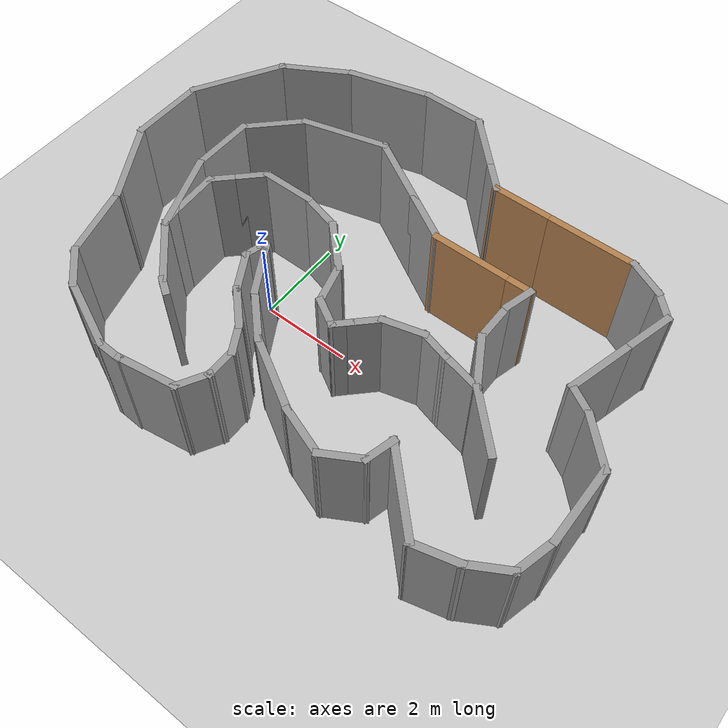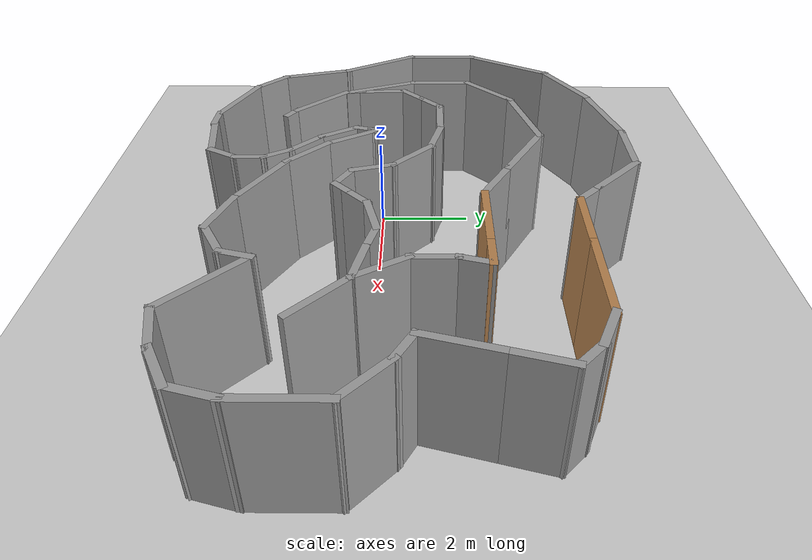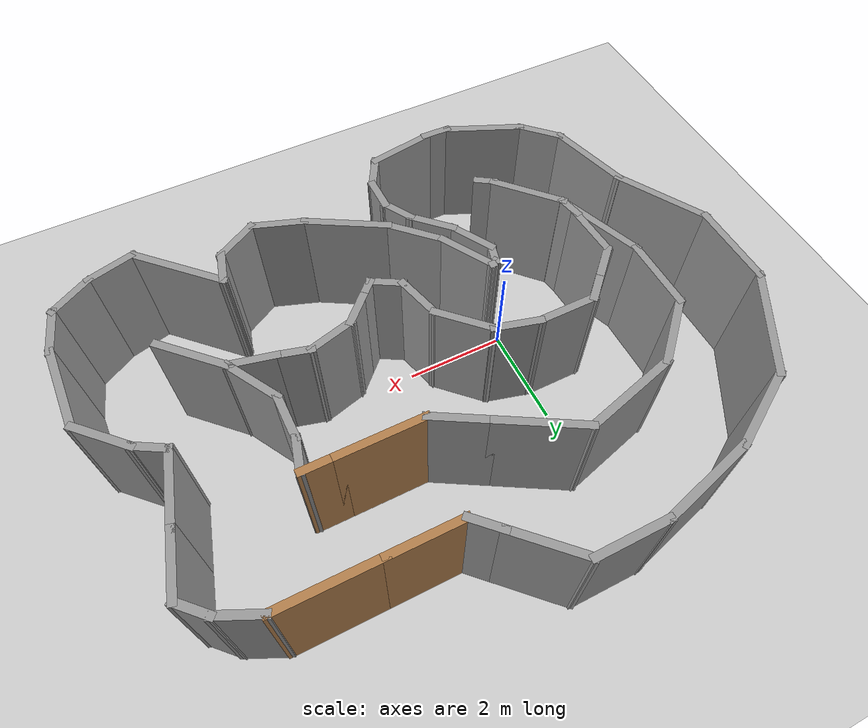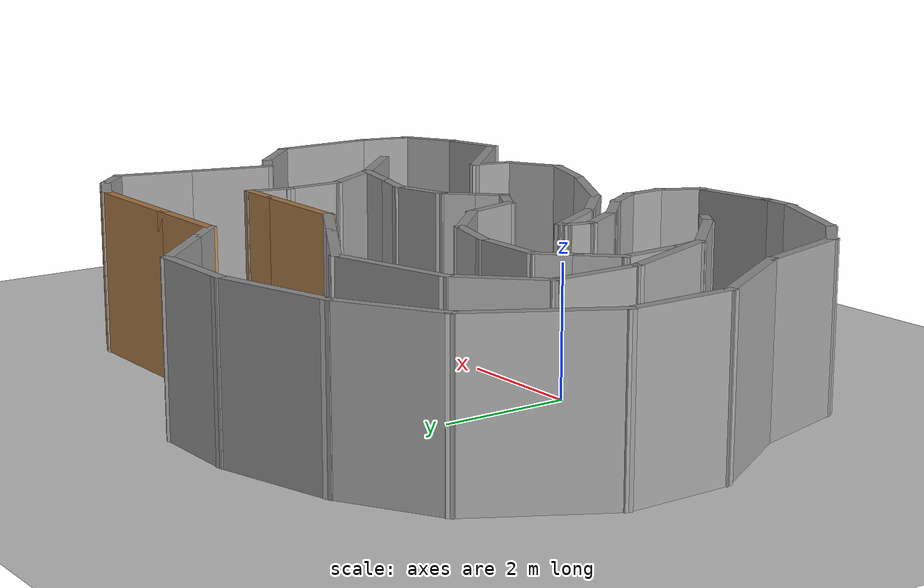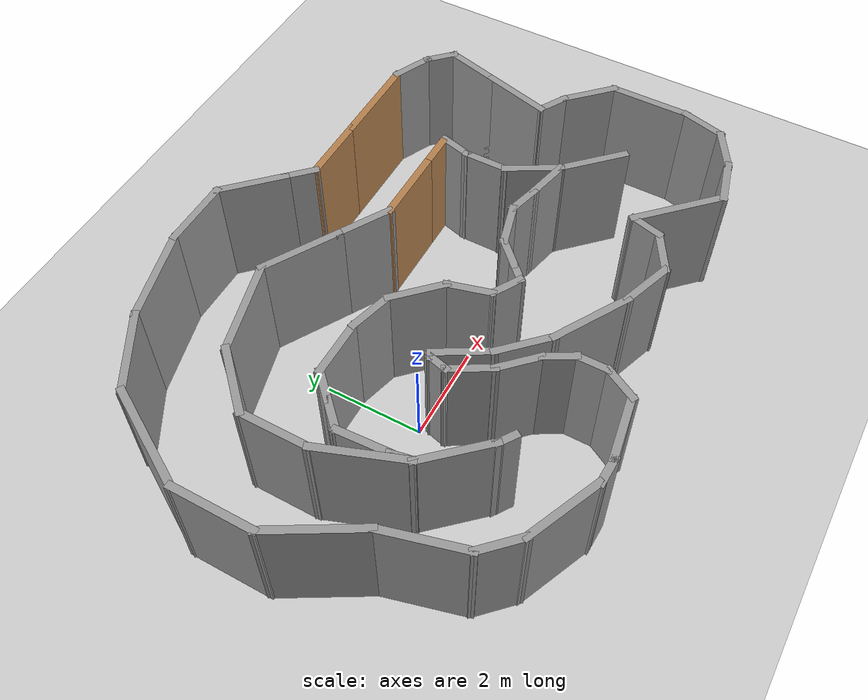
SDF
<sdf version="1.6">
 <world name="default">
  <light name="sun" type="directional">
   <pose>0 0 10 0 -0 0</pose>
   <diffuse>0.8 0.8 0.8 1</diffuse>
   <specular>0.2 0.2 0.2 1</specular>
   <attenuation>
    <range>1000</range>
    <constant>0.9</constant>
    <linear>0.01</linear>
    <quadratic>0.001</quadratic>
   </attenuation>
   <direction>-0.5 0.1 -0.9</direction>
  </light>
  <model name="ground_plane">
   <static>1</static>
   <link name="link">
    <collision name="collision">
     <geometry><plane><normal>0 0 1</normal><size>100 100</size></plane></geometry>
     <surface>
      <contact><collide_bitmask>65535</collide_bitmask></contact>
      <friction><ode><mu>100</mu><mu2>50</mu2></ode></friction>
     </surface>
    </collision>
    <visual name="visual">
     <cast_shadows>0</cast_shadows>
     <geometry><plane><normal>0 0 1</normal><size>100 100</size></plane></geometry>
     <material>
      <script><uri>file://media/materials/scripts/gazebo.material</uri><name>Gazebo/Grey</name></script>
     </material>
    </visual>
   </link>
  </model>
  <gravity>0 0 -9.8</gravity>
  <magnetic_field>6e-06 2.3e-05 -4.2e-05</magnetic_field>
  <atmosphere type="adiabatic"/>
  <physics name="default_physics" default="0" type="ode">
   <max_step_size>0.001</max_step_size>
   <real_time_factor>1</real_time_factor>
   <real_time_update_rate>1000</real_time_update_rate>
  </physics>
  <scene><ambient>0.4 0.4 0.4 1</ambient><background>0.7 0.7 0.7 1</background><shadows>1</shadows></scene>
  <audio><device>default</device></audio>
  <spherical_coordinates>
   <surface_model>EARTH_WGS84</surface_model>
   <latitude_deg>0</latitude_deg>
   <longitude_deg>0</longitude_deg>
   <elevation>0</elevation>
   <heading_deg>0</heading_deg>
  </spherical_coordinates>
  <model name="Untitled">
   <pose>1.95907 0.803787 0 0 -0 0</pose>
   <link name="Wall_100">
    <collision name="Wall_100_Collision">
     <geometry><box><size>0.996993 0.15 2.5</size></box></geometry>
     <pose>0 0 1.25 0 -0 0</pose>
    </collision>
    <visual name="Wall_100_Visual">
     <pose>0 0 1.25 0 -0 0</pose>
     <geometry><box><size>0.996993 0.15 2.5</size></box></geometry>
     <material>
      <script><uri>file://media/materials/scripts/gazebo.material</uri><name>Gazebo/Grey</name></script>
      <ambient>1 1 1 1</ambient>
     </material>
     <meta><layer>0</layer></meta>
    </visual>
    <pose>2.93878 -0.946089 0 0 -0 -0.224284</pose>
   </link>
   <link name="Wall_102">
    <collision name="Wall_102_Collision">
     <geometry><box><size>0.75 0.15 2.5</size></box></geometry>
     <pose>0 0 1.25 0 -0 0</pose>
    </collision>
    <visual name="Wall_102_Visual">
     <pose>0 0 1.25 0 -0 0</pose>
     <geometry><box><size>0.75 0.15 2.5</size></box></geometry>
     <material>
      <script><uri>file://media/materials/scripts/gazebo.material</uri><name>Gazebo/Grey</name></script>
      <ambient>1 1 1 1</ambient>
     </material>
     <meta><layer>0</layer></meta>
    </visual>
    <pose>2.7479 -3.09407 0 0 -0 -1.8326</pose>
   </link>
   <link name="Wall_103">
    <collision name="Wall_103_Collision">
     <geometry><box><size>1 0.15 2.5</size></box></geometry>
     <pose>0 0 1.25 0 -0 0</pose>
    </collision>
    <visual name="Wall_103_Visual">
     <pose>0 0 1.25 0 -0 0</pose>
     <geometry><box><size>1 0.15 2.5</size></box></geometry>
     <material>
      <script><uri>file://media/materials/scripts/gazebo.material</uri><name>Gazebo/Grey</name></script>
      <ambient>1 1 1 1</ambient>
     </material>
     <meta><layer>0</layer></meta>
    </visual>
    <pose>2.30219 -3.59635 0 0 -0 -2.61799</pose>
   </link>
   <link name="Wall_104">
    <collision name="Wall_104_Collision">
     <geometry><box><size>1.16353 0.15 2.5</size></box></geometry>
     <pose>0 0 1.25 0 -0 0</pose>
    </collision>
    <visual name="Wall_104_Visual">
     <pose>0 0 1.25 0 -0 0</pose>
     <geometry><box><size>1.16353 0.15 2.5</size></box></geometry>
     <material>
      <script><uri>file://media/materials/scripts/gazebo.material</uri><name>Gazebo/Grey</name></script>
      <ambient>1 1 1 1</ambient>
     </material>
     <meta><layer>0</layer></meta>
    </visual>
    <pose>1.45619 -3.64038 0 0 -0 2.80271</pose>
   </link>
   <link name="Wall_106">
    <collision name="Wall_106_Collision">
     <geometry><box><size>1.25 0.15 2.5</size></box></geometry>
     <pose>0 0 1.25 0 -0 0</pose>
    </collision>
    <visual name="Wall_106_Visual">
     <pose>0 0 1.25 0 -0 0</pose>
     <geometry><box><size>1.25 0.15 2.5</size></box></geometry>
     <material>
      <script><uri>file://media/materials/scripts/gazebo.material</uri><name>Gazebo/Grey</name></script>
      <ambient>1 1 1 1</ambient>
     </material>
     <meta><layer>0</layer></meta>
    </visual>
    <pose>-0.796303 -2.28301 0 0 -0 2.35619</pose>
   </link>
   <link name="Wall_107">
    <collision name="Wall_107_Collision">
     <geometry><box><size>1.25 0.15 2.5</size></box></geometry>
     <pose>0 0 1.25 0 -0 0</pose>
    </collision>
    <visual name="Wall_107_Visual">
     <pose>0 0 1.25 0 -0 0</pose>
     <geometry><box><size>1.25 0.15 2.5</size></box></geometry>
     <material>
      <script><uri>file://media/materials/scripts/gazebo.material</uri><name>Gazebo/Grey</name></script>
      <ambient>1 1 1 1</ambient>
     </material>
     <meta><layer>0</layer></meta>
    </visual>
    <pose>-1.46021 -1.41778 0 0 -0 2.0944</pose>
   </link>
   <link name="Wall_108">
    <collision name="Wall_108_Collision">
     <geometry><box><size>0.15 0.15 2.5</size></box></geometry>
     <pose>0 0 1.25 0 -0 0</pose>
    </collision>
    <visual name="Wall_108_Visual">
     <pose>0 0 1.25 0 -0 0</pose>
     <geometry><box><size>0.15 0.15 2.5</size></box></geometry>
     <material>
      <script><uri>file://media/materials/scripts/gazebo.material</uri><name>Gazebo/Grey</name></script>
      <ambient>1 1 1 1</ambient>
     </material>
     <meta><layer>0</layer></meta>
    </visual>
    <pose>-1.73521 -0.94147 0 0 -0 0</pose>
   </link>
   <link name="Wall_109">
    <collision name="Wall_109_Collision">
     <geometry><box><size>0.25 0.15 2.5</size></box></geometry>
     <pose>0 0 1.25 0 -0 0</pose>
    </collision>
    <visual name="Wall_109_Visual">
     <pose>0 0 1.25 0 -0 0</pose>
     <geometry><box><size>0.25 0.15 2.5</size></box></geometry>
     <material>
      <script><uri>file://media/materials/scripts/gazebo.material</uri><name>Gazebo/Grey</name></script>
      <ambient>1 1 1 1</ambient>
     </material>
     <meta><layer>0</layer></meta>
    </visual>
    <pose>-1.77851 -0.96647 0 0 -0 -2.61799</pose>
   </link>
   <link name="Wall_110">
    <collision name="Wall_110_Collision">
     <geometry><box><size>0.5 0.15 2.5</size></box></geometry>
     <pose>0 0 1.25 0 -0 0</pose>
    </collision>
    <visual name="Wall_110_Visual">
     <pose>0 0 1.25 0 -0 0</pose>
     <geometry><box><size>0.5 0.15 2.5</size></box></geometry>
     <material>
      <script><uri>file://media/materials/scripts/gazebo.material</uri><name>Gazebo/Grey</name></script>
      <ambient>1 1 1 1</ambient>
     </material>
     <meta><layer>0</layer></meta>
    </visual>
    <pose>-1.86711 -1.16051 0 0 -0 -1.8326</pose>
   </link>
   <link name="Wall_111">
    <collision name="Wall_111_Collision">
     <geometry><box><size>1 0.15 2.5</size></box></geometry>
     <pose>0 0 1.25 0 -0 0</pose>
    </collision>
    <visual name="Wall_111_Visual">
     <pose>0 0 1.25 0 -0 0</pose>
     <geometry><box><size>1 0.15 2.5</size></box></geometry>
     <material>
      <script><uri>file://media/materials/scripts/gazebo.material</uri><name>Gazebo/Grey</name></script>
      <ambient>1 1 1 1</ambient>
     </material>
     <meta><layer>0</layer></meta>
    </visual>
    <pose>-1.6999 -1.69761 0 0 -0 -1.0472</pose>
   </link>
   <link name="Wall_112">
    <collision name="Wall_112_Collision">
     <geometry><box><size>1 0.15 2.5</size></box></geometry>
     <pose>0 0 1.25 0 -0 0</pose>
    </collision>
    <visual name="Wall_112_Visual">
     <pose>0 0 1.25 0 -0 0</pose>
     <geometry><box><size>1 0.15 2.5</size></box></geometry>
     <material>
      <script><uri>file://media/materials/scripts/gazebo.material</uri><name>Gazebo/Grey</name></script>
      <ambient>1 1 1 1</ambient>
     </material>
     <meta><layer>0</layer></meta>
    </visual>
    <pose>-1.18688 -2.36619 0 0 -0 -0.785398</pose>
   </link>
   <link name="Wall_113">
    <collision name="Wall_113_Collision">
     <geometry><box><size>0.75 0.15 2.5</size></box></geometry>
     <pose>0 0 1.25 0 -0 0</pose>
    </collision>
    <visual name="Wall_113_Visual">
     <pose>0 0 1.25 0 -0 0</pose>
     <geometry><box><size>0.75 0.15 2.5</size></box></geometry>
     <material>
      <script><uri>file://media/materials/scripts/gazebo.material</uri><name>Gazebo/Grey</name></script>
      <ambient>1 1 1 1</ambient>
     </material>
     <meta><layer>0</layer></meta>
    </visual>
    <pose>-0.73636 -2.92651 0 0 -0 -1.0472</pose>
   </link>
   <link name="Wall_114">
    <collision name="Wall_114_Collision">
     <geometry><box><size>0.75 0.15 2.5</size></box></geometry>
     <pose>0 0 1.25 0 -0 0</pose>
    </collision>
    <visual name="Wall_114_Visual">
     <pose>0 0 1.25 0 -0 0</pose>
     <geometry><box><size>0.75 0.15 2.5</size></box></geometry>
     <material>
      <script><uri>file://media/materials/scripts/gazebo.material</uri><name>Gazebo/Grey</name></script>
      <ambient>1 1 1 1</ambient>
     </material>
     <meta><layer>0</layer></meta>
    </visual>
    <pose>-0.58636 -3.48632 0 0 -0 -1.5708</pose>
   </link>
   <link name="Wall_115">
    <collision name="Wall_115_Collision">
     <geometry><box><size>0.807607 0.15 2.5</size></box></geometry>
     <pose>0 0 1.25 0 -0 0</pose>
    </collision>
    <visual name="Wall_115_Visual">
     <pose>0 0 1.25 0 -0 0</pose>
     <geometry><box><size>0.807607 0.15 2.5</size></box></geometry>
     <material>
      <script><uri>file://media/materials/scripts/gazebo.material</uri><name>Gazebo/Grey</name></script>
      <ambient>1 1 1 1</ambient>
     </material>
     <meta><layer>0</layer></meta>
    </visual>
    <pose>-0.7463 -4.0736 0 0 -0 -2.07879</pose>
   </link>
   <link name="Wall_117">
    <collision name="Wall_117_Collision">
     <geometry><box><size>1.38756 0.15 2.5</size></box></geometry>
     <pose>0 0 1.25 0 -0 0</pose>
    </collision>
    <visual name="Wall_117_Visual">
     <pose>0 0 1.25 0 -0 0</pose>
     <geometry><box><size>1.38756 0.15 2.5</size></box></geometry>
     <material>
      <script><uri>file://media/materials/scripts/gazebo.material</uri><name>Gazebo/Grey</name></script>
      <ambient>1 1 1 1</ambient>
     </material>
     <meta><layer>0</layer></meta>
    </visual>
    <pose>-1.51707 -4.44453 0 0 -0 -2.98115</pose>
   </link>
   <link name="Wall_118">
    <collision name="Wall_118_Collision">
     <geometry><box><size>0.650231 0.15 2.5</size></box></geometry>
     <pose>0 0 1.25 0 -0 0</pose>
    </collision>
    <visual name="Wall_118_Visual">
     <pose>0 0 1.25 0 -0 0</pose>
     <geometry><box><size>0.650231 0.15 2.5</size></box></geometry>
     <material>
      <script><uri>file://media/materials/scripts/gazebo.material</uri><name>Gazebo/Grey</name></script>
      <ambient>1 1 1 1</ambient>
     </material>
     <meta><layer>0</layer></meta>
    </visual>
    <pose>-2.37791 -4.551 0 0 -0 3.11118</pose>
   </link>
   <link name="Wall_28">
    <collision name="Wall_28_Collision">
     <geometry><box><size>2 0.15 2.5</size></box></geometry>
     <pose>0 0 1.25 0 -0 0</pose>
    </collision>
    <visual name="Wall_28_Visual">
     <pose>0 0 1.25 0 -0 0</pose>
     <geometry><box><size>2 0.15 2.5</size></box></geometry>
     <material>
      <script><uri>file://media/materials/scripts/gazebo.material</uri><name>Gazebo/Grey</name></script>
      <ambient>1 1 1 1</ambient>
     </material>
     <meta><layer>0</layer></meta>
    </visual>
    <pose>3.47962 -3.45836 0 0 -0 2.35619</pose>
   </link>
   <link name="Wall_35">
    <collision name="Wall_35_Collision">
     <geometry><box><size>1.75 0.15 2.5</size></box></geometry>
     <pose>0 0 1.25 0 -0 0</pose>
    </collision>
    <visual name="Wall_35_Visual">
     <pose>0 0 1.25 0 -0 0</pose>
     <geometry><box><size>1.75 0.15 2.5</size></box></geometry>
     <material>
      <script><uri>file://media/materials/scripts/gazebo.material</uri><name>Gazebo/Grey</name></script>
      <ambient>1 1 1 1</ambient>
     </material>
     <meta><layer>0</layer></meta>
    </visual>
    <pose>0.285426 -3.07192 0 0 -0 2.61799</pose>
   </link>
   <link name="Wall_39">
    <collision name="Wall_39_Collision">
     <geometry><box><size>1.68574 0.15 2.5</size></box></geometry>
     <pose>0 0 1.25 0 -0 0</pose>
    </collision>
    <visual name="Wall_39_Visual">
     <pose>0 0 1.25 0 -0 0</pose>
     <geometry><box><size>1.68574 0.15 2.5</size></box></geometry>
     <material>
      <script><uri>file://media/materials/scripts/gazebo.material</uri><name>Gazebo/Grey</name></script>
      <ambient>1 1 1 1</ambient>
     </material>
     <meta><layer>0</layer></meta>
    </visual>
    <pose>-3.33221 -4.22227 0 0 -0 2.73183</pose>
   </link>
   <link name="Wall_40">
    <collision name="Wall_40_Collision">
     <geometry><box><size>1 0.15 2.5</size></box></geometry>
     <pose>0 0 1.25 0 -0 0</pose>
    </collision>
    <visual name="Wall_40_Visual">
     <pose>0 0 1.25 0 -0 0</pose>
     <geometry><box><size>1 0.15 2.5</size></box></geometry>
     <material>
      <script><uri>file://media/materials/scripts/gazebo.material</uri><name>Gazebo/Grey</name></script>
      <ambient>1 1 1 1</ambient>
     </material>
     <meta><layer>0</layer></meta>
    </visual>
    <pose>-4.33703 -3.61584 0 0 -0 2.35619</pose>
   </link>
   <link name="Wall_41">
    <collision name="Wall_41_Collision">
     <geometry><box><size>1.75 0.15 2.5</size></box></geometry>
     <pose>0 0 1.25 0 -0 0</pose>
    </collision>
    <visual name="Wall_41_Visual">
     <pose>0 0 1.25 0 -0 0</pose>
     <geometry><box><size>1.75 0.15 2.5</size></box></geometry>
     <material>
      <script><uri>file://media/materials/scripts/gazebo.material</uri><name>Gazebo/Grey</name></script>
      <ambient>1 1 1 1</ambient>
     </material>
     <meta><layer>0</layer></meta>
    </visual>
    <pose>-4.84461 -2.54258 0 0 -0 1.8326</pose>
   </link>
   <link name="Wall_45">
    <collision name="Wall_45_Collision">
     <geometry><box><size>1.06367 0.15 2.5</size></box></geometry>
     <pose>0 0 1.25 0 -0 0</pose>
    </collision>
    <visual name="Wall_45_Visual">
     <pose>0 0 1.25 0 -0 0</pose>
     <geometry><box><size>1.06367 0.15 2.5</size></box></geometry>
     <material>
      <script><uri>file://media/materials/scripts/gazebo.material</uri><name>Gazebo/Grey</name></script>
      <ambient>1 1 1 1</ambient>
     </material>
     <meta><layer>0</layer></meta>
    </visual>
    <pose>4.57531 -4.01072 0 0 -0 0.258836</pose>
   </link>
   <link name="Wall_46">
    <collision name="Wall_46_Collision">
     <geometry><box><size>1 0.15 2.5</size></box></geometry>
     <pose>0 0 1.25 0 -0 0</pose>
    </collision>
    <visual name="Wall_46_Visual">
     <pose>0 0 1.25 0 -0 0</pose>
     <geometry><box><size>1 0.15 2.5</size></box></geometry>
     <material>
      <script><uri>file://media/materials/scripts/gazebo.material</uri><name>Gazebo/Grey</name></script>
      <ambient>1 1 1 1</ambient>
     </material>
     <meta><layer>0</layer></meta>
    </visual>
    <pose>5.38499 -3.68129 0 0 -0 0.523599</pose>
   </link>
   <link name="Wall_47">
    <collision name="Wall_47_Collision">
     <geometry><box><size>1 0.15 2.5</size></box></geometry>
     <pose>0 0 1.25 0 -0 0</pose>
    </collision>
    <visual name="Wall_47_Visual">
     <pose>0 0 1.25 0 -0 0</pose>
     <geometry><box><size>1 0.15 2.5</size></box></geometry>
     <material>
      <script><uri>file://media/materials/scripts/gazebo.material</uri><name>Gazebo/Grey</name></script>
      <ambient>1 1 1 1</ambient>
     </material>
     <meta><layer>0</layer></meta>
    </visual>
    <pose>5.86305 -3.05827 0 0 -0 1.309</pose>
   </link>
   <link name="Wall_48">
    <collision name="Wall_48_Collision">
     <geometry><box><size>1.75 0.15 2.5</size></box></geometry>
     <pose>0 0 1.25 0 -0 0</pose>
    </collision>
    <visual name="Wall_48_Visual">
     <pose>0 0 1.25 0 -0 0</pose>
     <geometry><box><size>1.75 0.15 2.5</size></box></geometry>
     <material>
      <script><uri>file://media/materials/scripts/gazebo.material</uri><name>Gazebo/Grey</name></script>
      <ambient>1 1 1 1</ambient>
     </material>
     <meta><layer>0</layer></meta>
    </visual>
    <pose>5.97305 -1.84775 0 0 -0 1.5708</pose>
   </link>
   <link name="Wall_49">
    <collision name="Wall_49_Collision">
     <geometry><box><size>1.25 0.15 2.5</size></box></geometry>
     <pose>0 0 1.25 0 -0 0</pose>
    </collision>
    <visual name="Wall_49_Visual">
     <pose>0 0 1.25 0 -0 0</pose>
     <geometry><box><size>1.25 0.15 2.5</size></box></geometry>
     <material>
      <script><uri>file://media/materials/scripts/gazebo.material</uri><name>Gazebo/Grey</name></script>
      <ambient>1 1 1 1</ambient>
     </material>
     <meta><layer>0</layer></meta>
    </visual>
    <pose>5.58414 -0.658842 0 0 -0 2.35619</pose>
   </link>
   <link name="Wall_50">
    <collision name="Wall_50_Collision">
     <geometry><box><size>0.75 0.15 2.5</size></box></geometry>
     <pose>0 0 1.25 0 -0 0</pose>
    </collision>
    <visual name="Wall_50_Visual">
     <pose>0 0 1.25 0 -0 0</pose>
     <geometry><box><size>0.75 0.15 2.5</size></box></geometry>
     <material>
      <script><uri>file://media/materials/scripts/gazebo.material</uri><name>Gazebo/Grey</name></script>
      <ambient>1 1 1 1</ambient>
     </material>
     <meta><layer>0</layer></meta>
    </visual>
    <pose>4.93542 -0.119933 0 0 -0 2.61799</pose>
   </link>
   <link name="Wall_51">
    <collision name="Wall_51_Collision">
     <geometry><box><size>1.5 0.15 2.5</size></box></geometry>
     <pose>0 0 1.25 0 -0 0</pose>
    </collision>
    <visual name="Wall_51_Visual">
     <pose>0 0 1.25 0 -0 0</pose>
     <geometry><box><size>1.5 0.15 2.5</size></box></geometry>
     <material>
      <script><uri>file://media/materials/scripts/gazebo.material</uri><name>Gazebo/Grey</name></script>
      <ambient>1 1 1 1</ambient>
     </material>
     <meta><layer>0</layer></meta>
    </visual>
    <pose>4.85032 0.682067 0 0 -0 1.309</pose>
   </link>
   <link name="Wall_52">
    <collision name="Wall_52_Collision">
     <geometry><box><size>1.25 0.15 2.5</size></box></geometry>
     <pose>0 0 1.25 0 -0 0</pose>
    </collision>
    <visual name="Wall_52_Visual">
     <pose>0 0 1.25 0 -0 0</pose>
     <geometry><box><size>1.25 0.15 2.5</size></box></geometry>
     <material>
      <script><uri>file://media/materials/scripts/gazebo.material</uri><name>Gazebo/Grey</name></script>
      <ambient>1 1 1 1</ambient>
     </material>
     <meta><layer>0</layer></meta>
    </visual>
    <pose>5.16737 1.86533 0 0 -0 1.309</pose>
   </link>
   <link name="Wall_53">
    <collision name="Wall_53_Collision">
     <geometry><box><size>0.75 0.15 2.5</size></box></geometry>
     <pose>0 0 1.25 0 -0 0</pose>
    </collision>
    <visual name="Wall_53_Visual">
     <pose>0 0 1.25 0 -0 0</pose>
     <geometry><box><size>0.75 0.15 2.5</size></box></geometry>
     <material>
      <script><uri>file://media/materials/scripts/gazebo.material</uri><name>Gazebo/Grey</name></script>
      <ambient>1 1 1 1</ambient>
     </material>
     <meta><layer>0</layer></meta>
    </visual>
    <pose>5.09759 2.60872 0 0 -0 2.35619</pose>
   </link>
   <link name="Wall_58">
    <collision name="Wall_58_Collision">
     <geometry><box><size>0.75 0.15 2.5</size></box></geometry>
     <pose>0 0 1.25 0 -0 0</pose>
    </collision>
    <visual name="Wall_58_Visual">
     <pose>0 0 1.25 0 -0 0</pose>
     <geometry><box><size>0.75 0.15 2.5</size></box></geometry>
     <material>
      <script><uri>file://media/materials/scripts/gazebo.material</uri><name>Gazebo/Grey</name></script>
      <ambient>1 1 1 1</ambient>
     </material>
     <meta><layer>0</layer></meta>
    </visual>
    <pose>0.913169 -1.12874 0 0 -0 -2.35619</pose>
   </link>
   <link name="Wall_59">
    <collision name="Wall_59_Collision">
     <geometry><box><size>0.5 0.15 2.5</size></box></geometry>
     <pose>0 0 1.25 0 -0 0</pose>
    </collision>
    <visual name="Wall_59_Visual">
     <pose>0 0 1.25 0 -0 0</pose>
     <geometry><box><size>0.5 0.15 2.5</size></box></geometry>
     <material>
      <script><uri>file://media/materials/scripts/gazebo.material</uri><name>Gazebo/Grey</name></script>
      <ambient>1 1 1 1</ambient>
     </material>
     <meta><layer>0</layer></meta>
    </visual>
    <pose>0.577293 -1.46461 0 0 -0 -2.35619</pose>
   </link>
   <link name="Wall_60">
    <collision name="Wall_60_Collision">
     <geometry><box><size>0.75 0.15 2.5</size></box></geometry>
     <pose>0 0 1.25 0 -0 0</pose>
    </collision>
    <visual name="Wall_60_Visual">
     <pose>0 0 1.25 0 -0 0</pose>
     <geometry><box><size>0.75 0.15 2.5</size></box></geometry>
     <material>
      <script><uri>file://media/materials/scripts/gazebo.material</uri><name>Gazebo/Grey</name></script>
      <ambient>1 1 1 1</ambient>
     </material>
     <meta><layer>0</layer></meta>
    </visual>
    <pose>0.193742 -1.43836 0 0 -0 2.61799</pose>
   </link>
   <link name="Wall_61">
    <collision name="Wall_61_Collision">
     <geometry><box><size>1 0.15 2.5</size></box></geometry>
     <pose>0 0 1.25 0 -0 0</pose>
    </collision>
    <visual name="Wall_61_Visual">
     <pose>0 0 1.25 0 -0 0</pose>
     <geometry><box><size>1 0.15 2.5</size></box></geometry>
     <material>
      <script><uri>file://media/materials/scripts/gazebo.material</uri><name>Gazebo/Grey</name></script>
      <ambient>1 1 1 1</ambient>
     </material>
     <meta><layer>0</layer></meta>
    </visual>
    <pose>-0.176064 -0.877837 0 0 -0 1.8326</pose>
   </link>
   <link name="Wall_62">
    <collision name="Wall_62_Collision">
     <geometry><box><size>1.25 0.15 2.5</size></box></geometry>
     <pose>0 0 1.25 0 -0 0</pose>
    </collision>
    <visual name="Wall_62_Visual">
     <pose>0 0 1.25 0 -0 0</pose>
     <geometry><box><size>1.25 0.15 2.5</size></box></geometry>
     <material>
      <script><uri>file://media/materials/scripts/gazebo.material</uri><name>Gazebo/Grey</name></script>
      <ambient>1 1 1 1</ambient>
     </material>
     <meta><layer>0</layer></meta>
    </visual>
    <pose>-0.674971 -0.07841 0 0 -0 2.35619</pose>
   </link>
   <link name="Wall_63">
    <collision name="Wall_63_Collision">
     <geometry><box><size>1 0.15 2.5</size></box></geometry>
     <pose>0 0 1.25 0 -0 0</pose>
    </collision>
    <visual name="Wall_63_Visual">
     <pose>0 0 1.25 0 -0 0</pose>
     <geometry><box><size>1 0.15 2.5</size></box></geometry>
     <material>
      <script><uri>file://media/materials/scripts/gazebo.material</uri><name>Gazebo/Grey</name></script>
      <ambient>1 1 1 1</ambient>
     </material>
     <meta><layer>0</layer></meta>
    </visual>
    <pose>-1.4744 0.420497 0 0 -0 2.87979</pose>
   </link>
   <link name="Wall_64">
    <collision name="Wall_64_Collision">
     <geometry><box><size>1.25 0.15 2.5</size></box></geometry>
     <pose>0 0 1.25 0 -0 0</pose>
    </collision>
    <visual name="Wall_64_Visual">
     <pose>0 0 1.25 0 -0 0</pose>
     <geometry><box><size>1.25 0.15 2.5</size></box></geometry>
     <material>
      <script><uri>file://media/materials/scripts/gazebo.material</uri><name>Gazebo/Grey</name></script>
      <ambient>1 1 1 1</ambient>
     </material>
     <meta><layer>0</layer></meta>
    </visual>
    <pose>-2.43492 0.530495 0 0 -0 3.14159</pose>
   </link>
   <link name="Wall_65">
    <collision name="Wall_65_Collision">
     <geometry><box><size>0.75 0.15 2.5</size></box></geometry>
     <pose>0 0 1.25 0 -0 0</pose>
    </collision>
    <visual name="Wall_65_Visual">
     <pose>0 0 1.25 0 -0 0</pose>
     <geometry><box><size>0.75 0.15 2.5</size></box></geometry>
     <material>
      <script><uri>file://media/materials/scripts/gazebo.material</uri><name>Gazebo/Grey</name></script>
      <ambient>1 1 1 1</ambient>
     </material>
     <meta><layer>0</layer></meta>
    </visual>
    <pose>-3.19705 0.318363 0 0 -0 -2.35619</pose>
   </link>
   <link name="Wall_66">
    <collision name="Wall_66_Collision">
     <geometry><box><size>0.75 0.15 2.5</size></box></geometry>
     <pose>0 0 1.25 0 -0 0</pose>
    </collision>
    <visual name="Wall_66_Visual">
     <pose>0 0 1.25 0 -0 0</pose>
     <geometry><box><size>0.75 0.15 2.5</size></box></geometry>
     <material>
      <script><uri>file://media/materials/scripts/gazebo.material</uri><name>Gazebo/Grey</name></script>
      <ambient>1 1 1 1</ambient>
     </material>
     <meta><layer>0</layer></meta>
    </visual>
    <pose>-3.62131 -0.105901 0 0 -0 -2.35619</pose>
   </link>
   <link name="Wall_67">
    <collision name="Wall_67_Collision">
     <geometry><box><size>1.15492 0.15 2.5</size></box></geometry>
     <pose>0 0 1.25 0 -0 0</pose>
    </collision>
    <visual name="Wall_67_Visual">
     <pose>0 0 1.25 0 -0 0</pose>
     <geometry><box><size>1.15492 0.15 2.5</size></box></geometry>
     <material>
      <script><uri>file://media/materials/scripts/gazebo.material</uri><name>Gazebo/Grey</name></script>
      <ambient>1 1 1 1</ambient>
     </material>
     <meta><layer>0</layer></meta>
    </visual>
    <pose>-3.80709 -0.819804 0 0 -0 -1.51833</pose>
   </link>
   <link name="Wall_68">
    <collision name="Wall_68_Collision">
     <geometry><box><size>0.555968 0.15 2.5</size></box></geometry>
     <pose>0 0 1.25 0 -0 0</pose>
    </collision>
    <visual name="Wall_68_Visual">
     <pose>0 0 1.25 0 -0 0</pose>
     <geometry><box><size>0.555968 0.15 2.5</size></box></geometry>
     <material>
      <script><uri>file://media/materials/scripts/gazebo.material</uri><name>Gazebo/Grey</name></script>
      <ambient>1 1 1 1</ambient>
     </material>
     <meta><layer>0</layer></meta>
    </visual>
    <pose>-3.75826 -1.52103 0 0 -0 -1.38404</pose>
   </link>
   <link name="Wall_69">
    <collision name="Wall_69_Collision">
     <geometry><box><size>1.58439 0.15 2.5</size></box></geometry>
     <pose>0 0 1.25 0 -0 0</pose>
    </collision>
    <visual name="Wall_69_Visual">
     <pose>0 0 1.25 0 -0 0</pose>
     <geometry><box><size>1.58439 0.15 2.5</size></box></geometry>
     <material>
      <script><uri>file://media/materials/scripts/gazebo.material</uri><name>Gazebo/Grey</name></script>
      <ambient>1 1 1 1</ambient>
     </material>
     <meta><layer>0</layer></meta>
    </visual>
    <pose>-3.24802 -2.24627 0 0 -0 -0.822894</pose>
   </link>
   <link name="Wall_70">
    <collision name="Wall_70_Collision">
     <geometry><box><size>0.484769 0.15 2.5</size></box></geometry>
     <pose>0 0 1.25 0 -0 0</pose>
    </collision>
    <visual name="Wall_70_Visual">
     <pose>0 0 1.25 0 -0 0</pose>
     <geometry><box><size>0.484769 0.15 2.5</size></box></geometry>
     <material>
      <script><uri>file://media/materials/scripts/gazebo.material</uri><name>Gazebo/Grey</name></script>
      <ambient>1 1 1 1</ambient>
     </material>
     <meta><layer>0</layer></meta>
    </visual>
    <pose>-2.63651 -2.86539 0 0 -0 -0.591439</pose>
   </link>
   <link name="Wall_72">
    <collision name="Wall_72_Collision">
     <geometry><box><size>2 0.15 2.5</size></box></geometry>
     <pose>0 0 1.25 0 -0 0</pose>
    </collision>
    <visual name="Wall_72_Visual">
     <pose>0 0 1.25 0 -0 0</pose>
     <geometry><box><size>2 0.15 2.5</size></box></geometry>
     <material>
      <script><uri>file://media/materials/scripts/gazebo.material</uri><name>Gazebo/Grey</name></script>
      <ambient>1 1 1 1</ambient>
     </material>
     <meta><layer>0</layer></meta>
    </visual>
    <pose>-5.51416 -0.968763 0 0 -0 2.0944</pose>
   </link>
   <link name="Wall_73">
    <collision name="Wall_73_Collision">
     <geometry><box><size>1.75 0.15 2.5</size></box></geometry>
     <pose>0 0 1.25 0 -0 0</pose>
    </collision>
    <visual name="Wall_73_Visual">
     <pose>0 0 1.25 0 -0 0</pose>
     <geometry><box><size>1.75 0.15 2.5</size></box></geometry>
     <material>
      <script><uri>file://media/materials/scripts/gazebo.material</uri><name>Gazebo/Grey</name></script>
      <ambient>1 1 1 1</ambient>
     </material>
     <meta><layer>0</layer></meta>
    </visual>
    <pose>-5.97666 0.632311 0 0 -0 1.5708</pose>
   </link>
   <link name="Wall_74">
    <collision name="Wall_74_Collision">
     <geometry><box><size>2.25 0.15 2.5</size></box></geometry>
     <pose>0 0 1.25 0 -0 0</pose>
    </collision>
    <visual name="Wall_74_Visual">
     <pose>0 0 1.25 0 -0 0</pose>
     <geometry><box><size>2.25 0.15 2.5</size></box></geometry>
     <material>
      <script><uri>file://media/materials/scripts/gazebo.material</uri><name>Gazebo/Grey</name></script>
      <ambient>1 1 1 1</ambient>
     </material>
     <meta><layer>0</layer></meta>
    </visual>
    <pose>-5.45166 2.34164 0 0 -0 1.0472</pose>
   </link>
   <link name="Wall_76">
    <collision name="Wall_76_Collision">
     <geometry><box><size>1.75 0.15 2.5</size></box></geometry>
     <pose>0 0 1.25 0 -0 0</pose>
    </collision>
    <visual name="Wall_76_Visual">
     <pose>0 0 1.25 0 -0 0</pose>
     <geometry><box><size>1.75 0.15 2.5</size></box></geometry>
     <material>
      <script><uri>file://media/materials/scripts/gazebo.material</uri><name>Gazebo/Grey</name></script>
      <ambient>1 1 1 1</ambient>
     </material>
     <meta><layer>0</layer></meta>
    </visual>
    <pose>-4.23384 3.65096 0 0 -0 0.523599</pose>
   </link>
   <link name="Wall_77">
    <collision name="Wall_77_Collision">
     <geometry><box><size>2 0.15 2.5</size></box></geometry>
     <pose>0 0 1.25 0 -0 0</pose>
    </collision>
    <visual name="Wall_77_Visual">
     <pose>0 0 1.25 0 -0 0</pose>
     <geometry><box><size>2 0.15 2.5</size></box></geometry>
     <material>
      <script><uri>file://media/materials/scripts/gazebo.material</uri><name>Gazebo/Grey</name></script>
      <ambient>1 1 1 1</ambient>
     </material>
     <meta><layer>0</layer></meta>
    </visual>
    <pose>-2.64754 4.29037 0 0 -0 0.261799</pose>
   </link>
   <link name="Wall_78">
    <collision name="Wall_78_Collision">
     <geometry><box><size>1.5 0.15 2.5</size></box></geometry>
     <pose>0 0 1.25 0 -0 0</pose>
    </collision>
    <visual name="Wall_78_Visual">
     <pose>0 0 1.25 0 -0 0</pose>
     <geometry><box><size>1.5 0.15 2.5</size></box></geometry>
     <material>
      <script><uri>file://media/materials/scripts/gazebo.material</uri><name>Gazebo/Grey</name></script>
      <ambient>1 1 1 1</ambient>
     </material>
     <meta><layer>0</layer></meta>
    </visual>
    <pose>-1.07906 4.52978 0 0 -0 0</pose>
   </link>
   <link name="Wall_79">
    <collision name="Wall_79_Collision">
     <geometry><box><size>1.5 0.15 2.5</size></box></geometry>
     <pose>0 0 1.25 0 -0 0</pose>
    </collision>
    <visual name="Wall_79_Visual">
     <pose>0 0 1.25 0 -0 0</pose>
     <geometry><box><size>1.5 0.15 2.5</size></box></geometry>
     <material>
      <script><uri>file://media/materials/scripts/gazebo.material</uri><name>Gazebo/Grey</name></script>
      <ambient>1 1 1 1</ambient>
     </material>
     <meta><layer>0</layer></meta>
    </visual>
    <pose>0.073237 4.05248 0 0 -0 -0.785398</pose>
   </link>
   <link name="Wall_80">
    <collision name="Wall_80_Collision">
     <geometry><box><size>0.75 0.15 2.5</size></box></geometry>
     <pose>0 0 1.25 0 -0 0</pose>
    </collision>
    <visual name="Wall_80_Visual">
     <pose>0 0 1.25 0 -0 0</pose>
     <geometry><box><size>0.75 0.15 2.5</size></box></geometry>
     <material>
      <script><uri>file://media/materials/scripts/gazebo.material</uri><name>Gazebo/Grey</name></script>
      <ambient>1 1 1 1</ambient>
     </material>
     <meta><layer>0</layer></meta>
    </visual>
    <pose>0.762666 3.36305 0 0 -0 -0.785398</pose>
   </link>
   <link name="Wall_81">
    <collision name="Wall_81_Collision">
     <geometry><box><size>1.5 0.15 2.5</size></box></geometry>
     <pose>0 0 1.25 0 -0 0</pose>
    </collision>
    <visual name="Wall_81_Visual">
     <pose>0 0 1.25 0 -0 0</pose>
     <geometry><box><size>1.5 0.15 2.5</size></box></geometry>
     <material>
      <script><uri>file://media/materials/scripts/gazebo.material</uri><name>Gazebo/Wood</name></script>
      <ambient>1 1 1 1</ambient>
     </material>
     <meta><layer>0</layer></meta>
    </visual>
    <pose>1.6498 3.15092 0 0 -0 0</pose>
   </link>
   <link name="Wall_82">
    <collision name="Wall_82_Collision">
     <geometry><box><size>2 0.15 2.5</size></box></geometry>
     <pose>0 0 1.25 0 -0 0</pose>
    </collision>
    <visual name="Wall_82_Visual">
     <pose>0 0 1.25 0 -0 0</pose>
     <geometry><box><size>2 0.15 2.5</size></box></geometry>
     <material>
      <script><uri>file://media/materials/scripts/gazebo.material</uri><name>Gazebo/Wood</name></script>
      <ambient>1 1 1 1</ambient>
     </material>
     <meta><layer>0</layer></meta>
    </visual>
    <pose>3.2498 3.15092 0 0 -0 0</pose>
   </link>
   <link name="Wall_83">
    <collision name="Wall_83_Collision">
     <geometry><box><size>0.933573 0.15 2.5</size></box></geometry>
     <pose>0 0 1.25 0 -0 0</pose>
    </collision>
    <visual name="Wall_83_Visual">
     <pose>0 0 1.25 0 -0 0</pose>
     <geometry><box><size>0.933573 0.15 2.5</size></box></geometry>
     <material>
      <script><uri>file://media/materials/scripts/gazebo.material</uri><name>Gazebo/Grey</name></script>
      <ambient>1 1 1 1</ambient>
     </material>
     <meta><layer>0</layer></meta>
    </visual>
    <pose>4.53013 2.98589 0 0 -0 -0.434811</pose>
   </link>
   <link name="Wall_85">
    <collision name="Wall_85_Collision">
     <geometry><box><size>1.88676 0.15 2.5</size></box></geometry>
     <pose>0 0 1.25 0 -0 0</pose>
    </collision>
    <visual name="Wall_85_Visual">
     <pose>0 0 1.25 0 -0 0</pose>
     <geometry><box><size>1.88676 0.15 2.5</size></box></geometry>
     <material>
      <script><uri>file://media/materials/scripts/gazebo.material</uri><name>Gazebo/Grey</name></script>
      <ambient>1 1 1 1</ambient>
     </material>
     <meta><layer>0</layer></meta>
    </visual>
    <pose>-4.02172 -0.905994 0 0 -0 1.92494</pose>
   </link>
   <link name="Wall_86">
    <collision name="Wall_86_Collision">
     <geometry><box><size>1.5 0.15 2.5</size></box></geometry>
     <pose>0 0 1.25 0 -0 0</pose>
    </collision>
    <visual name="Wall_86_Visual">
     <pose>0 0 1.25 0 -0 0</pose>
     <geometry><box><size>1.5 0.15 2.5</size></box></geometry>
     <material>
      <script><uri>file://media/materials/scripts/gazebo.material</uri><name>Gazebo/Grey</name></script>
      <ambient>1 1 1 1</ambient>
     </material>
     <meta><layer>0</layer></meta>
    </visual>
    <pose>-4.32286 0.583496 0 0 -0 1.5708</pose>
   </link>
   <link name="Wall_87">
    <collision name="Wall_87_Collision">
     <geometry><box><size>1.5 0.15 2.5</size></box></geometry>
     <pose>0 0 1.25 0 -0 0</pose>
    </collision>
    <visual name="Wall_87_Visual">
     <pose>0 0 1.25 0 -0 0</pose>
     <geometry><box><size>1.5 0.15 2.5</size></box></geometry>
     <material>
      <script><uri>file://media/materials/scripts/gazebo.material</uri><name>Gazebo/Grey</name></script>
      <ambient>1 1 1 1</ambient>
     </material>
     <meta><layer>0</layer></meta>
    </visual>
    <pose>-3.84556 1.73579 0 0 -0 0.785398</pose>
   </link>
   <link name="Wall_88">
    <collision name="Wall_88_Collision">
     <geometry><box><size>2 0.15 2.5</size></box></geometry>
     <pose>0 0 1.25 0 -0 0</pose>
    </collision>
    <visual name="Wall_88_Visual">
     <pose>0 0 1.25 0 -0 0</pose>
     <geometry><box><size>2 0.15 2.5</size></box></geometry>
     <material>
      <script><uri>file://media/materials/scripts/gazebo.material</uri><name>Gazebo/Grey</name></script>
      <ambient>1 1 1 1</ambient>
     </material>
     <meta><layer>0</layer></meta>
    </visual>
    <pose>-2.47479 2.4525 0 0 -0 0.261799</pose>
   </link>
   <link name="Wall_89">
    <collision name="Wall_89_Collision">
     <geometry><box><size>1.75 0.15 2.5</size></box></geometry>
     <pose>0 0 1.25 0 -0 0</pose>
    </collision>
    <visual name="Wall_89_Visual">
     <pose>0 0 1.25 0 -0 0</pose>
     <geometry><box><size>1.75 0.15 2.5</size></box></geometry>
     <material>
      <script><uri>file://media/materials/scripts/gazebo.material</uri><name>Gazebo/Grey</name></script>
      <ambient>1 1 1 1</ambient>
     </material>
     <meta><layer>0</layer></meta>
    </visual>
    <pose>-0.888484 2.29191 0 0 -0 -0.523599</pose>
   </link>
   <link name="Wall_90">
    <collision name="Wall_90_Collision">
     <geometry><box><size>1.25 0.15 2.5</size></box></geometry>
     <pose>0 0 1.25 0 -0 0</pose>
    </collision>
    <visual name="Wall_90_Visual">
     <pose>0 0 1.25 0 -0 0</pose>
     <geometry><box><size>1.25 0.15 2.5</size></box></geometry>
     <material>
      <script><uri>file://media/materials/scripts/gazebo.material</uri><name>Gazebo/Grey</name></script>
      <ambient>1 1 1 1</ambient>
     </material>
     <meta><layer>0</layer></meta>
    </visual>
    <pose>0.28065 1.61691 0 0 -0 -0.523599</pose>
   </link>
   <link name="Wall_91">
    <collision name="Wall_91_Collision">
     <geometry><box><size>1.75 0.15 2.5</size></box></geometry>
     <pose>0 0 1.25 0 -0 0</pose>
    </collision>
    <visual name="Wall_91_Visual">
     <pose>0 0 1.25 0 -0 0</pose>
     <geometry><box><size>1.75 0.15 2.5</size></box></geometry>
     <material>
      <script><uri>file://media/materials/scripts/gazebo.material</uri><name>Gazebo/Wood</name></script>
      <ambient>1 1 1 1</ambient>
     </material>
     <meta><layer>0</layer></meta>
    </visual>
    <pose>1.55696 1.34191 0 0 -0 0</pose>
   </link>
   <link name="Wall_92">
    <collision name="Wall_92_Collision">
     <geometry><box><size>0.75 0.15 2.5</size></box></geometry>
     <pose>0 0 1.25 0 -0 0</pose>
    </collision>
    <visual name="Wall_92_Visual">
     <pose>0 0 1.25 0 -0 0</pose>
     <geometry><box><size>0.75 0.15 2.5</size></box></geometry>
     <material>
      <script><uri>file://media/materials/scripts/gazebo.material</uri><name>Gazebo/Wood</name></script>
      <ambient>1 1 1 1</ambient>
     </material>
     <meta><layer>0</layer></meta>
    </visual>
    <pose>2.65696 1.34191 0 0 -0 0</pose>
   </link>
   <link name="Wall_93">
    <collision name="Wall_93_Collision">
     <geometry><box><size>0.75 0.15 2.5</size></box></geometry>
     <pose>0 0 1.25 0 -0 0</pose>
    </collision>
    <visual name="Wall_93_Visual">
     <pose>0 0 1.25 0 -0 0</pose>
     <geometry><box><size>0.75 0.15 2.5</size></box></geometry>
     <material>
      <script><uri>file://media/materials/scripts/gazebo.material</uri><name>Gazebo/Grey</name></script>
      <ambient>1 1 1 1</ambient>
     </material>
     <meta><layer>0</layer></meta>
    </visual>
    <pose>2.87932 1.05213 0 0 -0 -1.8326</pose>
   </link>
   <link name="Wall_94">
    <collision name="Wall_94_Collision">
     <geometry><box><size>1 0.15 2.5</size></box></geometry>
     <pose>0 0 1.25 0 -0 0</pose>
    </collision>
    <visual name="Wall_94_Visual">
     <pose>0 0 1.25 0 -0 0</pose>
     <geometry><box><size>1 0.15 2.5</size></box></geometry>
     <material>
      <script><uri>file://media/materials/scripts/gazebo.material</uri><name>Gazebo/Grey</name></script>
      <ambient>1 1 1 1</ambient>
     </material>
     <meta><layer>0</layer></meta>
    </visual>
    <pose>2.80167 0.33735 0 0 -0 -1.5708</pose>
   </link>
   <link name="Wall_95">
    <collision name="Wall_95_Collision">
     <geometry><box><size>1.25 0.15 2.5</size></box></geometry>
     <pose>0 0 1.25 0 -0 0</pose>
    </collision>
    <visual name="Wall_95_Visual">
     <pose>0 0 1.25 0 -0 0</pose>
     <geometry><box><size>1.25 0.15 2.5</size></box></geometry>
     <material>
      <script><uri>file://media/materials/scripts/gazebo.material</uri><name>Gazebo/Grey</name></script>
      <ambient>1 1 1 1</ambient>
     </material>
     <meta><layer>0</layer></meta>
    </visual>
    <pose>3.07667 -0.563964 0 0 -0 -1.0472</pose>
   </link>
   <link name="Wall_96">
    <collision name="Wall_96_Collision">
     <geometry><box><size>1.5 0.15 2.5</size></box></geometry>
     <pose>0 0 1.25 0 -0 0</pose>
    </collision>
    <visual name="Wall_96_Visual">
     <pose>0 0 1.25 0 -0 0</pose>
     <geometry><box><size>1.5 0.15 2.5</size></box></geometry>
     <material>
      <script><uri>file://media/materials/scripts/gazebo.material</uri><name>Gazebo/Grey</name></script>
      <ambient>1 1 1 1</ambient>
     </material>
     <meta><layer>0</layer></meta>
    </visual>
    <pose>3.82897 -1.51757 0 0 -0 -0.785398</pose>
   </link>
   <link name="Wall_98">
    <collision name="Wall_98_Collision">
     <geometry><box><size>1 0.15 2.5</size></box></geometry>
     <pose>0 0 1.25 0 -0 0</pose>
    </collision>
    <visual name="Wall_98_Visual">
     <pose>0 0 1.25 0 -0 0</pose>
     <geometry><box><size>1 0.15 2.5</size></box></geometry>
     <material>
      <script><uri>file://media/materials/scripts/gazebo.material</uri><name>Gazebo/Grey</name></script>
      <ambient>1 1 1 1</ambient>
     </material>
     <meta><layer>0</layer></meta>
    </visual>
    <pose>1.53582 -0.806606 0 0 -0 0.261799</pose>
   </link>
   <link name="Wall_99">
    <collision name="Wall_99_Collision">
     <geometry><box><size>0.75 0.15 2.5</size></box></geometry>
     <pose>0 0 1.25 0 -0 0</pose>
    </collision>
    <visual name="Wall_99_Visual">
     <pose>0 0 1.25 0 -0 0</pose>
     <geometry><box><size>0.75 0.15 2.5</size></box></geometry>
     <material>
      <script><uri>file://media/materials/scripts/gazebo.material</uri><name>Gazebo/Grey</name></script>
      <ambient>1 1 1 1</ambient>
     </material>
     <meta><layer>0</layer></meta>
    </visual>
    <pose>2.23612 -0.774254 0 0 -0 -0.261799</pose>
   </link>
   <static>1</static>
  </model>
 </world>
</sdf>
